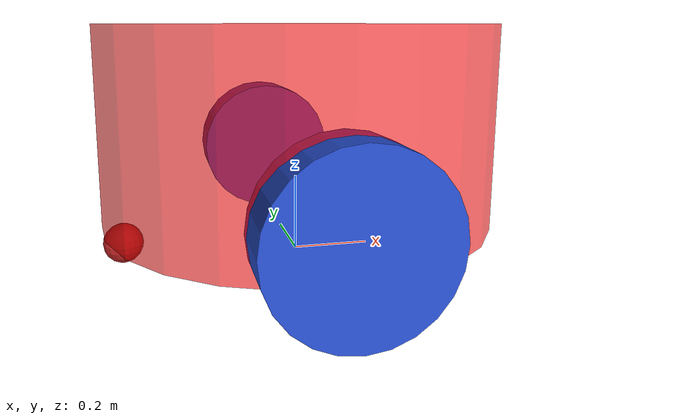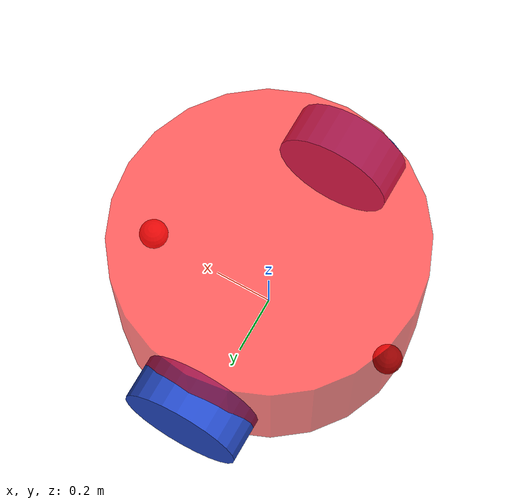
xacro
<?xml version="1.0"?>
<robot xmlns:xacro="http://www.ros.org/wiki/xacro" name="robot_name">

    <xacro:property name="floor_base_distance" value="0.1"/>
    <xacro:property name="PI" value="3.1415926"/>

<!-- base link -->
    <xacro:property name="base_link_r" value="0.5"/>
    <xacro:property name="base_link_length" value="0.5"/>
    <xacro:property name="base_link_m" value="2"/>

    <link name="base_footprint">
        <visual>
            <geometry>
                <sphere radius="0.0001"/>
            </geometry>
        </visual>
    </link>
    <link name="base_link">
        <visual>
            <geometry>
                <cylinder radius="${base_link_r}" length="${base_link_length}"/>
            </geometry>
            <origin xyz="0.0 0.0 0.0" rpy="0.0 0.0 0.0"/>
            <material name="red">
                <color rgba="1 0 0 0.6"/>
            </material>
        </visual>
        <collision>
             <geometry>
                <cylinder radius="${base_link_r}" length="${base_link_length}"/>
            </geometry>
            <origin xyz="0.0 0.0 0.0" rpy="0.0 0.0 0.0"/>
        </collision>

        <!-- set inertial matrix -->
        <xacro:cylinder_inertial_matrix m="${base_link_m}" r="${base_link_r}" h="${base_link_length}"/>
    </link>
    <joint name="base_link2base_footprint" type="fixed">
        <parent link="base_footprint"/>
        <child link="base_link"/>
        <origin xyz="0.0 0.0 ${base_link_length/2+floor_base_distance}" rpy="0.0 0.0 0.0"/>
    </joint>
    <gazebo reference="base_link">
        <material>Gazebo/Yellow</material>
    </gazebo>

<!-- universal wheel macro -->
    <xacro:property name="uni_wheel_r" value="0.05"/>
    <xacro:property name="uni_wheel_m" value="0.01"/>
    <!-- flage -1:right wheel 1:left wheel -->
    <xacro:macro name="add_uni_wheel" params="name flage">
        <link name="${name}_uni_wheel">
            <visual>
                <geometry>
                    <sphere radius="${uni_wheel_r}"/>
                </geometry>
                <origin xyz="0.0 0.0 0.0" rpy="0.0 0.0 0.0"/>
            </visual>
            <collision>
                <geometry>
                    <sphere radius="${uni_wheel_r}"/>
                </geometry>
                <origin xyz="0.0 0.0 0.0" rpy="0.0 0.0 0.0"/>
            </collision>
            <!-- set inertial matrix -->
            <xacro:sphere_inertial_matrix m="${uni_wheel_m}" r="${uni_wheel_r}"/>
        </link>
        <joint name="${name}_uni_wheel2base_link" type="continuous">
            <parent link="base_link"/>
            <child link="${name}_uni_wheel"/>
            <origin xyz="${(base_link_r-uni_wheel_r)*flage} 0.0 ${-(uni_wheel_r+base_link_length/2)}" rpy="0.0 0.0 0.0"/>
            <!-- can rotate about the x,y,z axis -->
            <axis xyz="1 1 1"/>
        </joint>
        <gazebo reference="${name}_uni_wheel">
            <material>Gazebo/Red</material>
        </gazebo>
    </xacro:macro>

    <!-- driving wheel macro -->
     <xacro:property name="dri_wheel_r" value="0.2"/>
     <xacro:property name="dri_wheel_length" value="0.15"/>
     <xacro:property name="dri_wheel_m" value="0.2"/>
    <!-- flage -1:right wheel 1:left wheel -->
    <xacro:macro name="add_dri_wheel" params="name flage">
        <link name="${name}_dri_wheel">
            <visual>
                <geometry>
                    <cylinder radius="${dri_wheel_r}" length="${dri_wheel_length}"/>
                </geometry>
                <origin xyz="0.0 0.0 0.0" rpy="${PI/2} 0.0 0.0"/>
            </visual>
            <collision>
                 <geometry>
                    <cylinder radius="${dri_wheel_r}" length="${dri_wheel_length}"/>
                </geometry>
                <origin xyz="0.0 0.0 0.0" rpy="${PI/2} 0.0 0.0"/>
            </collision>
            <!-- set inertial matrix -->
            <xacro:cylinder_inertial_matrix m="${dri_wheel_m}" h="${dri_wheel_length}" r="${dri_wheel_r}"/>
        </link>
        <joint name="${name}_dri_wheel2base_link" type="continuous">
            <parent link="base_link"/>
            <child link="${name}_dri_wheel"/>
            <origin xyz="0 ${base_link_r*flage} ${dri_wheel_r-(floor_base_distance+base_link_length/2)}" rpy="0.0 0.0 0.0"/>
            <!-- can rotate about the y axis -->
            <axis xyz="0 1 0"/>
        </joint>
        <gazebo reference="${name}_dri_wheel">
            <material>Gazebo/Blue</material>
        </gazebo>
    </xacro:macro>

    <!-- use universal wheel macro -->
    <xacro:add_uni_wheel name="left" flage="1"/>
    <xacro:add_uni_wheel name="right" flage="-1"/>
    <!-- use driving wheel macro -->
    <xacro:add_dri_wheel name="left" flage="1"/>
    <xacro:add_dri_wheel name="right" flage="-1"/>
</robot>
